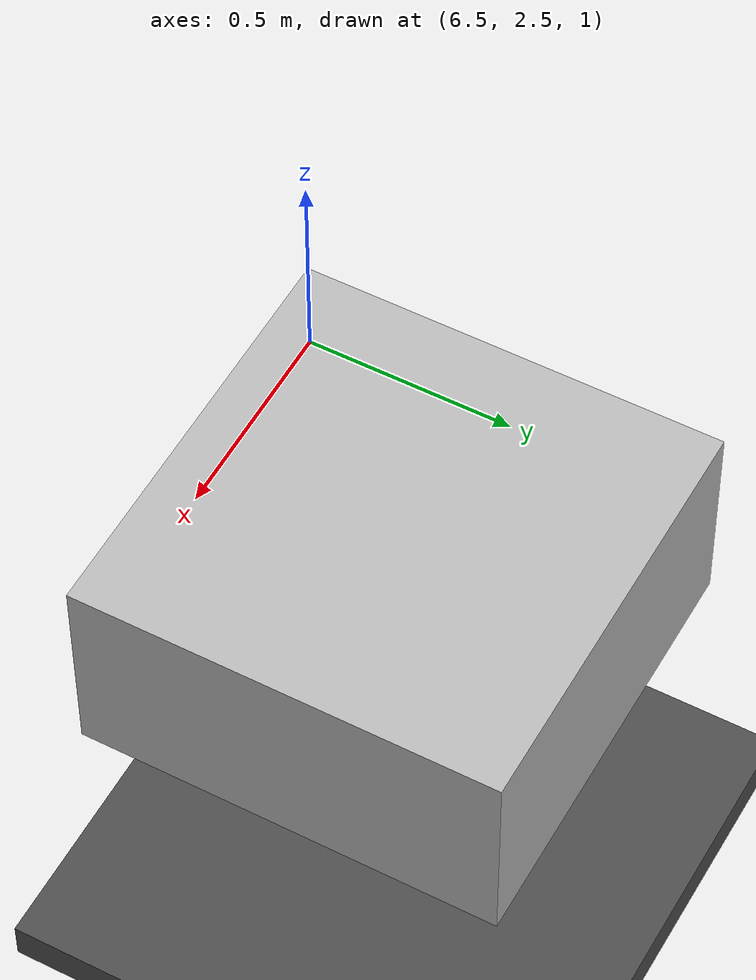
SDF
<sdf version="1.6">
 <world name="default">
  <light name="sun" type="directional">
   <pose>0 0 10 0 -0 0</pose>
   <diffuse>0.8 0.8 0.8 1</diffuse>
   <specular>0.2 0.2 0.2 1</specular>
   <attenuation>
    <range>1000</range>
    <constant>0.9</constant>
    <linear>0.01</linear>
    <quadratic>0.001</quadratic>
   </attenuation>
   <direction>-0.5 0.1 -0.9</direction>
  </light>
  <include><uri>model://apriltag</uri><pose>7 3 1 0 0 0</pose></include>
  <model name="ground_plane">
   <static>1</static>
   <link name="link">
    <collision name="collision">
     <geometry><plane><normal>0 0 1</normal><size>100 100</size></plane></geometry>
     <surface><friction><ode><mu>100</mu><mu2>50</mu2></ode></friction></surface>
    </collision>
    <visual name="visual">
     <cast_shadows>0</cast_shadows>
     <geometry><plane><normal>0 0 1</normal><size>100 100</size></plane></geometry>
     <material>
      <script><uri>file://media/materials/scripts/gazebo.material</uri><name>Gazebo/Grey</name></script>
     </material>
    </visual>
   </link>
  </model>
  <gravity>0 0 -9.8</gravity>
  <magnetic_field>6e-06 2.3e-05 -4.2e-05</magnetic_field>
  <atmosphere type="adiabatic"/>
  <physics name="default_physics" default="0" type="ode">
   <max_step_size>0.001</max_step_size>
   <real_time_factor>1</real_time_factor>
   <real_time_update_rate>1000</real_time_update_rate>
  </physics>
  <scene><ambient>0.4 0.4 0.4 1</ambient><background>0.7 0.7 0.7 1</background><shadows>1</shadows></scene>
  <spherical_coordinates>
   <surface_model>EARTH_WGS84</surface_model>
   <latitude_deg>0</latitude_deg>
   <longitude_deg>0</longitude_deg>
   <elevation>0</elevation>
   <heading_deg>0</heading_deg>
  </spherical_coordinates>
  <model name="asphalt_plane">
   <link name="link">
    <inertial>
     <mass>1</mass>
     <inertia><ixx>1</ixx><ixy>0</ixy><ixz>0</ixz><iyy>1</iyy><iyz>0</iyz><izz>1</izz></inertia>
    </inertial>
    <visual name="visual">
     <cast_shadows>0</cast_shadows>
     <geometry><box><size>100 100 0.1</size></box></geometry>
     <material>
      <script>
       <uri>model://asphalt_plane/materials/scripts</uri>
       <uri>model://asphalt_plane/materials/textures</uri>
       <name>vrc/asphalt</name>
      </script>
      <ambient>0.5 0.5 0.5 1</ambient>
      <diffuse>0.5 0.5 0.5 1</diffuse>
      <specular>0.2 0.2 0.2 1</specular>
      <emissive>0 0 0 1</emissive>
      <shader type="vertex"><normal_map>__default__</normal_map></shader>
     </material>
    </visual>
    <collision name="collision">
     <geometry><box><size>100 100 0.1</size></box></geometry>
     <surface>
      <friction>
       <ode><mu>1</mu><mu2>1</mu2><fdir1>0 0 0</fdir1><slip1>0</slip1><slip2>0</slip2></ode>
       <torsional>
        <coefficient>1</coefficient>
        <patch_radius>0</patch_radius>
        <surface_radius>0</surface_radius>
        <use_patch_radius>1</use_patch_radius>
        <ode><slip>0</slip></ode>
       </torsional>
      </friction>
      <bounce><restitution_coefficient>0</restitution_coefficient><threshold>1e+06</threshold></bounce>
      <contact>
       <collide_without_contact>0</collide_without_contact>
       <collide_without_contact_bitmask>1</collide_without_contact_bitmask>
       <collide_bitmask>1</collide_bitmask>
       <ode>
        <soft_cfm>0</soft_cfm>
        <soft_erp>0.2</soft_erp>
        <kp>1e+13</kp>
        <kd>1</kd>
        <max_vel>0.01</max_vel>
        <min_depth>0</min_depth>
       </ode>
       <bullet>
        <split_impulse>1</split_impulse>
        <split_impulse_penetration_threshold>-0.01</split_impulse_penetration_threshold>
        <soft_cfm>0</soft_cfm>
        <soft_erp>0.2</soft_erp>
        <kp>1e+13</kp>
        <kd>1</kd>
       </bullet>
      </contact>
     </surface>
    </collision>
   </link>
   <static>1</static>
   <pose>-0.000924 -0.03244 0 0 -0 0</pose>
  </model>
 </world>
</sdf>

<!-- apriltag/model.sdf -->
<sdf version="1.4">
<model name="apriltag">
  <static>false</static>
    <link name="link">
     <inertial>
        <mass>20</mass>
        <pose frame=''>0 0 0 0 -0 0</pose>
        <inertia>
          <ixx>1</ixx>
          <ixy>0</ixy>
          <ixz>0</ixz>
          <iyy>1</iyy>
          <iyz>0</iyz>
          <izz>1</izz>
        </inertia>
      </inertial>
      <collision name="collision">
        <geometry>
          <box>
            <size>1 1 0.5</size>
          </box>
        </geometry>
        <surface>
          <friction>
            <ode>
              <mu>100</mu>
              <mu2>50</mu2>
            </ode>
          </friction>
        </surface>
      </collision>
      <visual name="visual">
        <cast_shadows>false</cast_shadows>
        <geometry>
        <box>
            <size>1 1 0.5</size>

          </box>
        </geometry>
        <material>
          <script>
              <uri>file://media/materials/scripts/apriltag.material</uri>
            <name>AprilTag/Image</name>
          </script>
        </material>
      </visual>
    </link>
  </model>
</sdf>
